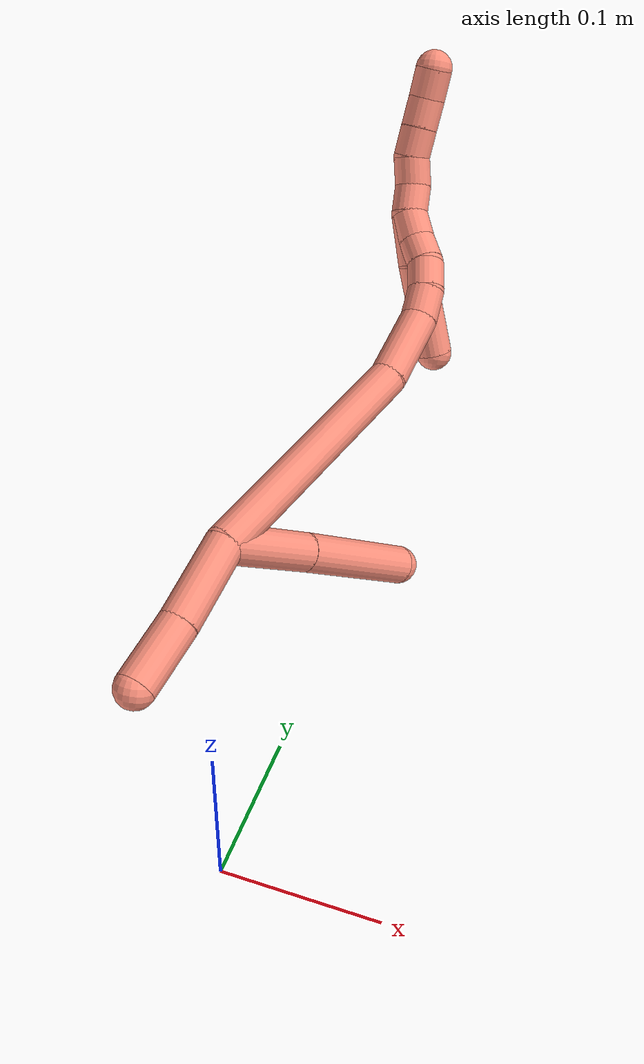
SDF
<sdf version="1.7">
 <world name="default">
  <model name="bin">
   <static>1</static>
   <link name="bottom">
    <collision name="collision-bottom">
     <pose>0 0 -0.01 0 -0 0</pose>
     <geometry><box><size>0.8 0.6 0.02</size></box></geometry>
     <surface>
      <friction><ode><mu>100</mu><mu2>100</mu2></ode></friction>
      <contact><collide_bitmask>65535</collide_bitmask></contact>
     </surface>
    </collision>
   </link>
   <link name="west_wall">
    <collision name="collision-west_wall">
     <pose>-0.41 0 0.1 0 -0 0</pose>
     <geometry><box><size>0.02 0.6 0.2</size></box></geometry>
     <surface>
      <friction><ode><mu>100</mu><mu2>100</mu2></ode></friction>
      <contact><collide_bitmask>65535</collide_bitmask></contact>
     </surface>
    </collision>
   </link>
   <link name="east_wall">
    <collision name="collision-east_wall">
     <pose>0.41 0 0.1 0 -0 0</pose>
     <geometry><box><size>0.02 0.6 0.2</size></box></geometry>
     <surface>
      <friction><ode><mu>100</mu><mu2>100</mu2></ode></friction>
      <contact><collide_bitmask>65535</collide_bitmask></contact>
     </surface>
    </collision>
   </link>
   <link name="south_wall">
    <collision name="collision-south_wall">
     <pose>0 -0.31 0.1 0 -0 0</pose>
     <geometry><box><size>0.8 0.02 0.2</size></box></geometry>
     <surface>
      <friction><ode><mu>100</mu><mu2>100</mu2></ode></friction>
      <contact><collide_bitmask>65535</collide_bitmask></contact>
     </surface>
    </collision>
   </link>
   <link name="north_wall">
    <collision name="collision-north_wall">
     <pose>0 0.31 0.1 0 -0 0</pose>
     <geometry><box><size>0.8 0.02 0.2</size></box></geometry>
     <surface>
      <friction><ode><mu>100</mu><mu2>100</mu2></ode></friction>
      <contact><collide_bitmask>65535</collide_bitmask></contact>
     </surface>
    </collision>
   </link>
  </model>
  <model name="16">
   <static>0</static>
   <link name="16">
    <collision name="collision-cylinder-e_1_2_8">
     <pose>-0.03073 0.005395 -0.005026 -2.32074 -1.33531 2.133</pose>
     <geometry><cylinder><radius>0.0125</radius><length>0.063203</length></cylinder></geometry>
     <surface>
      <friction><ode><mu>1.16</mu><mu2>1.16</mu2><slip1>0</slip1><slip2>0</slip2></ode></friction>
      <contact><ode><kp>1e+06</kp><kd>1</kd><max_vel>0</max_vel><min_depth>0.001</min_depth></ode></contact>
     </surface>
    </collision>
    <visual name="visual-cylinder-e_1_2_8">
     <pose>-0.03073 0.005395 -0.005026 -2.32074 -1.33531 2.133</pose>
     <geometry><cylinder><radius>0.0125</radius><length>0.063203</length></cylinder></geometry>
     <material><ambient>1 0.576471 0.494118 1</ambient></material>
    </visual>
    <collision name="collision-cylinder-e_2_8_6">
     <pose>-0.103635 0.017345 -0.017903 -2.44601 -1.33289 2.27775</pose>
     <geometry><cylinder><radius>0.0125</radius><length>0.086797</length></cylinder></geometry>
     <surface>
      <friction><ode><mu>1.16</mu><mu2>1.16</mu2><slip1>0</slip1><slip2>0</slip2></ode></friction>
      <contact><ode><kp>1e+06</kp><kd>1</kd><max_vel>0</max_vel><min_depth>0.001</min_depth></ode></contact>
     </surface>
    </collision>
    <visual name="visual-cylinder-e_2_8_6">
     <pose>-0.103635 0.017345 -0.017903 -2.44601 -1.33289 2.27775</pose>
     <geometry><cylinder><radius>0.0125</radius><length>0.086797</length></cylinder></geometry>
     <material><ambient>1 0.576471 0.494118 1</ambient></material>
    </visual>
    <collision name="collision-cylinder-e_1_2_9">
     <pose>0.019445 0.004525 -0.019926 -2.9183 0.760627 -2.59477</pose>
     <geometry><cylinder><radius>0.0125</radius><length>0.056413</length></cylinder></geometry>
     <surface>
      <friction><ode><mu>1.16</mu><mu2>1.16</mu2><slip1>0</slip1><slip2>0</slip2></ode></friction>
      <contact><ode><kp>1e+06</kp><kd>1</kd><max_vel>0</max_vel><min_depth>0.001</min_depth></ode></contact>
     </surface>
    </collision>
    <visual name="visual-cylinder-e_1_2_9">
     <pose>0.019445 0.004525 -0.019926 -2.9183 0.760627 -2.59477</pose>
     <geometry><cylinder><radius>0.0125</radius><length>0.056413</length></cylinder></geometry>
     <material><ambient>1 0.576471 0.494118 1</ambient></material>
    </visual>
    <collision name="collision-cylinder-e_2_9_5">
     <pose>0.054838 0.011686 -0.054469 -2.96311 0.82092 -2.73602</pose>
     <geometry><cylinder><radius>0.0125</radius><length>0.043587</length></cylinder></geometry>
     <surface>
      <friction><ode><mu>1.16</mu><mu2>1.16</mu2><slip1>0</slip1><slip2>0</slip2></ode></friction>
      <contact><ode><kp>1e+06</kp><kd>1</kd><max_vel>0</max_vel><min_depth>0.001</min_depth></ode></contact>
     </surface>
    </collision>
    <visual name="visual-cylinder-e_2_9_5">
     <pose>0.054838 0.011686 -0.054469 -2.96311 0.82092 -2.73602</pose>
     <geometry><cylinder><radius>0.0125</radius><length>0.043587</length></cylinder></geometry>
     <material><ambient>1 0.576471 0.494118 1</ambient></material>
    </visual>
    <collision name="collision-cylinder-e_1_2_10">
     <pose>-0.066863 -1.1e-05 0.048701 0.000225 -0.941284 -0.000114</pose>
     <geometry><cylinder><radius>0.0125</radius><length>0.165438</length></cylinder></geometry>
     <surface>
      <friction><ode><mu>1.16</mu><mu2>1.16</mu2><slip1>0</slip1><slip2>0</slip2></ode></friction>
      <contact><ode><kp>1e+06</kp><kd>1</kd><max_vel>0</max_vel><min_depth>0.001</min_depth></ode></contact>
     </surface>
    </collision>
    <visual name="visual-cylinder-e_1_2_10">
     <pose>-0.066863 -1.1e-05 0.048701 0.000225 -0.941284 -0.000114</pose>
     <geometry><cylinder><radius>0.0125</radius><length>0.165438</length></cylinder></geometry>
     <material><ambient>1 0.576471 0.494118 1</ambient></material>
    </visual>
    <collision name="collision-cylinder-e_2_10_11">
     <pose>-0.151152 -0.00382 0.116517 0.196145 -0.729575 -0.075109</pose>
     <geometry><cylinder><radius>0.0125</radius><length>0.052288</length></cylinder></geometry>
     <surface>
      <friction><ode><mu>1.16</mu><mu2>1.16</mu2><slip1>0</slip1><slip2>0</slip2></ode></friction>
      <contact><ode><kp>1e+06</kp><kd>1</kd><max_vel>0</max_vel><min_depth>0.001</min_depth></ode></contact>
     </surface>
    </collision>
    <visual name="visual-cylinder-e_2_10_11">
     <pose>-0.151152 -0.00382 0.116517 0.196145 -0.729575 -0.075109</pose>
     <geometry><cylinder><radius>0.0125</radius><length>0.052288</length></cylinder></geometry>
     <material><ambient>1 0.576471 0.494118 1</ambient></material>
    </visual>
    <collision name="collision-cylinder-e_3_11_12">
     <pose>-0.173017 -0.009601 0.145485 0.198599 -0.415901 -0.042037</pose>
     <geometry><cylinder><radius>0.0125</radius><length>0.021973</length></cylinder></geometry>
     <surface>
      <friction><ode><mu>1.16</mu><mu2>1.16</mu2><slip1>0</slip1><slip2>0</slip2></ode></friction>
      <contact><ode><kp>1e+06</kp><kd>1</kd><max_vel>0</max_vel><min_depth>0.001</min_depth></ode></contact>
     </surface>
    </collision>
    <visual name="visual-cylinder-e_3_11_12">
     <pose>-0.173017 -0.009601 0.145485 0.198599 -0.415901 -0.042037</pose>
     <geometry><cylinder><radius>0.0125</radius><length>0.021973</length></cylinder></geometry>
     <material><ambient>1 0.576471 0.494118 1</ambient></material>
    </visual>
    <collision name="collision-cylinder-e_4_12_13">
     <pose>-0.180473 -0.015637 0.164018 0.43681 -0.305134 -0.068227</pose>
     <geometry><cylinder><radius>0.0125</radius><length>0.020087</length></cylinder></geometry>
     <surface>
      <friction><ode><mu>1.16</mu><mu2>1.16</mu2><slip1>0</slip1><slip2>0</slip2></ode></friction>
      <contact><ode><kp>1e+06</kp><kd>1</kd><max_vel>0</max_vel><min_depth>0.001</min_depth></ode></contact>
     </surface>
    </collision>
    <visual name="visual-cylinder-e_4_12_13">
     <pose>-0.180473 -0.015637 0.164018 0.43681 -0.305134 -0.068227</pose>
     <geometry><cylinder><radius>0.0125</radius><length>0.020087</length></cylinder></geometry>
     <material><ambient>1 0.576471 0.494118 1</ambient></material>
    </visual>
    <collision name="collision-cylinder-e_5_13_14">
     <pose>-0.185726 -0.026397 0.179825 0.755133 -0.224506 -0.089354</pose>
     <geometry><cylinder><radius>0.0125</radius><length>0.020078</length></cylinder></geometry>
     <surface>
      <friction><ode><mu>1.16</mu><mu2>1.16</mu2><slip1>0</slip1><slip2>0</slip2></ode></friction>
      <contact><ode><kp>1e+06</kp><kd>1</kd><max_vel>0</max_vel><min_depth>0.001</min_depth></ode></contact>
     </surface>
    </collision>
    <visual name="visual-cylinder-e_5_13_14">
     <pose>-0.185726 -0.026397 0.179825 0.755133 -0.224506 -0.089354</pose>
     <geometry><cylinder><radius>0.0125</radius><length>0.020078</length></cylinder></geometry>
     <material><ambient>1 0.576471 0.494118 1</ambient></material>
    </visual>
    <collision name="collision-cylinder-e_6_14_1">
     <pose>-0.188016 -0.038169 0.195653 0.527074 -0.005487 -0.001481</pose>
     <geometry><cylinder><radius>0.0125</radius><length>0.020136</length></cylinder></geometry>
     <surface>
      <friction><ode><mu>1.16</mu><mu2>1.16</mu2><slip1>0</slip1><slip2>0</slip2></ode></friction>
      <contact><ode><kp>1e+06</kp><kd>1</kd><max_vel>0</max_vel><min_depth>0.001</min_depth></ode></contact>
     </surface>
    </collision>
    <visual name="visual-cylinder-e_6_14_1">
     <pose>-0.188016 -0.038169 0.195653 0.527074 -0.005487 -0.001481</pose>
     <geometry><cylinder><radius>0.0125</radius><length>0.020136</length></cylinder></geometry>
     <material><ambient>1 0.576471 0.494118 1</ambient></material>
    </visual>
    <collision name="collision-cylinder-e_1_1_15">
     <pose>-0.189986 -0.044936 0.214021 0.174305 -0.19268 -0.016887</pose>
     <geometry><cylinder><radius>0.0125</radius><length>0.02</length></cylinder></geometry>
     <surface>
      <friction><ode><mu>1.16</mu><mu2>1.16</mu2><slip1>0</slip1><slip2>0</slip2></ode></friction>
      <contact><ode><kp>1e+06</kp><kd>1</kd><max_vel>0</max_vel><min_depth>0.001</min_depth></ode></contact>
     </surface>
    </collision>
    <visual name="visual-cylinder-e_1_1_15">
     <pose>-0.189986 -0.044936 0.214021 0.174305 -0.19268 -0.016887</pose>
     <geometry><cylinder><radius>0.0125</radius><length>0.02</length></cylinder></geometry>
     <material><ambient>1 0.576471 0.494118 1</ambient></material>
    </visual>
    <collision name="collision-cylinder-e_2_15_16">
     <pose>-0.190451 -0.048175 0.233461 0.155962 0.145466 0.011387</pose>
     <geometry><cylinder><radius>0.0125</radius><length>0.02</length></cylinder></geometry>
     <surface>
      <friction><ode><mu>1.16</mu><mu2>1.16</mu2><slip1>0</slip1><slip2>0</slip2></ode></friction>
      <contact><ode><kp>1e+06</kp><kd>1</kd><max_vel>0</max_vel><min_depth>0.001</min_depth></ode></contact>
     </surface>
    </collision>
    <visual name="visual-cylinder-e_2_15_16">
     <pose>-0.190451 -0.048175 0.233461 0.155962 0.145466 0.011387</pose>
     <geometry><cylinder><radius>0.0125</radius><length>0.02</length></cylinder></geometry>
     <material><ambient>1 0.576471 0.494118 1</ambient></material>
    </visual>
    <collision name="collision-cylinder-e_3_16_17">
     <pose>-0.188911 -0.048416 0.253151 -0.129971 0.00911 -0.000593</pose>
     <geometry><cylinder><radius>0.0125</radius><length>0.02</length></cylinder></geometry>
     <surface>
      <friction><ode><mu>1.16</mu><mu2>1.16</mu2><slip1>0</slip1><slip2>0</slip2></ode></friction>
      <contact><ode><kp>1e+06</kp><kd>1</kd><max_vel>0</max_vel><min_depth>0.001</min_depth></ode></contact>
     </surface>
    </collision>
    <visual name="visual-cylinder-e_3_16_17">
     <pose>-0.188911 -0.048416 0.253151 -0.129971 0.00911 -0.000593</pose>
     <geometry><cylinder><radius>0.0125</radius><length>0.02</length></cylinder></geometry>
     <material><ambient>1 0.576471 0.494118 1</ambient></material>
    </visual>
    <collision name="collision-cylinder-e_4_17_18">
     <pose>-0.18898 -0.045957 0.272997 -0.116574 -0.016057 0.000937</pose>
     <geometry><cylinder><radius>0.0125</radius><length>0.02</length></cylinder></geometry>
     <surface>
      <friction><ode><mu>1.16</mu><mu2>1.16</mu2><slip1>0</slip1><slip2>0</slip2></ode></friction>
      <contact><ode><kp>1e+06</kp><kd>1</kd><max_vel>0</max_vel><min_depth>0.001</min_depth></ode></contact>
     </surface>
    </collision>
    <visual name="visual-cylinder-e_4_17_18">
     <pose>-0.18898 -0.045957 0.272997 -0.116574 -0.016057 0.000937</pose>
     <geometry><cylinder><radius>0.0125</radius><length>0.02</length></cylinder></geometry>
     <material><ambient>1 0.576471 0.494118 1</ambient></material>
    </visual>
    <collision name="collision-cylinder-e_5_18_4">
     <pose>-0.188128 -0.04302 0.292717 -0.179204 0.101424 -0.00912</pose>
     <geometry><cylinder><radius>0.0125</radius><length>0.02</length></cylinder></geometry>
     <surface>
      <friction><ode><mu>1.16</mu><mu2>1.16</mu2><slip1>0</slip1><slip2>0</slip2></ode></friction>
      <contact><ode><kp>1e+06</kp><kd>1</kd><max_vel>0</max_vel><min_depth>0.001</min_depth></ode></contact>
     </surface>
    </collision>
    <visual name="visual-cylinder-e_5_18_4">
     <pose>-0.188128 -0.04302 0.292717 -0.179204 0.101424 -0.00912</pose>
     <geometry><cylinder><radius>0.0125</radius><length>0.02</length></cylinder></geometry>
     <material><ambient>1 0.576471 0.494118 1</ambient></material>
    </visual>
    <collision name="collision-cylinder-e_1_1_19">
     <pose>-0.190672 -0.038793 0.187813 -2.87931 -0.150703 1.0397</pose>
     <geometry><cylinder><radius>0.0125</radius><length>0.034647</length></cylinder></geometry>
     <surface>
      <friction><ode><mu>1.16</mu><mu2>1.16</mu2><slip1>0</slip1><slip2>0</slip2></ode></friction>
      <contact><ode><kp>1e+06</kp><kd>1</kd><max_vel>0</max_vel><min_depth>0.001</min_depth></ode></contact>
     </surface>
    </collision>
    <visual name="visual-cylinder-e_1_1_19">
     <pose>-0.190672 -0.038793 0.187813 -2.87931 -0.150703 1.0397</pose>
     <geometry><cylinder><radius>0.0125</radius><length>0.034647</length></cylinder></geometry>
     <material><ambient>1 0.576471 0.494118 1</ambient></material>
    </visual>
    <collision name="collision-cylinder-e_2_19_3">
     <pose>-0.203646 -0.027873 0.14097 -2.93094 -0.323036 1.99051</pose>
     <geometry><cylinder><radius>0.0125</radius><length>0.065353</length></cylinder></geometry>
     <surface>
      <friction><ode><mu>1.16</mu><mu2>1.16</mu2><slip1>0</slip1><slip2>0</slip2></ode></friction>
      <contact><ode><kp>1e+06</kp><kd>1</kd><max_vel>0</max_vel><min_depth>0.001</min_depth></ode></contact>
     </surface>
    </collision>
    <visual name="visual-cylinder-e_2_19_3">
     <pose>-0.203646 -0.027873 0.14097 -2.93094 -0.323036 1.99051</pose>
     <geometry><cylinder><radius>0.0125</radius><length>0.065353</length></cylinder></geometry>
     <material><ambient>1 0.576471 0.494118 1</ambient></material>
    </visual>
    <collision name="collision-sphere-3">
     <pose>-0.214019 -0.021394 0.110669 0 -0 0</pose>
     <geometry><sphere><radius>0.0125</radius></sphere></geometry>
     <surface>
      <friction><ode><mu>1.16</mu><mu2>1.16</mu2><slip1>0</slip1><slip2>0</slip2></ode></friction>
      <contact><ode><kp>1e+06</kp><kd>1</kd><max_vel>0</max_vel><min_depth>0.001</min_depth></ode></contact>
     </surface>
    </collision>
    <visual name="visual-sphere-3">
     <pose>-0.214019 -0.021394 0.110669 0 -0 0</pose>
     <geometry><sphere><radius>0.0125</radius></sphere></geometry>
     <material><ambient>1 0.576471 0.494118 1</ambient></material>
    </visual>
    <collision name="collision-sphere-19">
     <pose>-0.193273 -0.034352 0.171272 0 -0 0</pose>
     <geometry><sphere><radius>0.0125</radius></sphere></geometry>
     <surface>
      <friction><ode><mu>1.16</mu><mu2>1.16</mu2><slip1>0</slip1><slip2>0</slip2></ode></friction>
      <contact><ode><kp>1e+06</kp><kd>1</kd><max_vel>0</max_vel><min_depth>0.001</min_depth></ode></contact>
     </surface>
    </collision>
    <visual name="visual-sphere-19">
     <pose>-0.193273 -0.034352 0.171272 0 -0 0</pose>
     <geometry><sphere><radius>0.0125</radius></sphere></geometry>
     <material><ambient>1 0.576471 0.494118 1</ambient></material>
    </visual>
    <collision name="collision-sphere-10">
     <pose>-0.133726 -2.2e-05 0.097402 0 -0 0</pose>
     <geometry><sphere><radius>0.0125</radius></sphere></geometry>
     <surface>
      <friction><ode><mu>1.16</mu><mu2>1.16</mu2><slip1>0</slip1><slip2>0</slip2></ode></friction>
      <contact><ode><kp>1e+06</kp><kd>1</kd><max_vel>0</max_vel><min_depth>0.001</min_depth></ode></contact>
     </surface>
    </collision>
    <visual name="visual-sphere-10">
     <pose>-0.133726 -2.2e-05 0.097402 0 -0 0</pose>
     <geometry><sphere><radius>0.0125</radius></sphere></geometry>
     <material><ambient>1 0.576471 0.494118 1</ambient></material>
    </visual>
    <collision name="collision-sphere-5">
     <pose>0.070786 0.014323 -0.069086 0 -0 0</pose>
     <geometry><sphere><radius>0.0125</radius></sphere></geometry>
     <surface>
      <friction><ode><mu>1.16</mu><mu2>1.16</mu2><slip1>0</slip1><slip2>0</slip2></ode></friction>
      <contact><ode><kp>1e+06</kp><kd>1</kd><max_vel>0</max_vel><min_depth>0.001</min_depth></ode></contact>
     </surface>
    </collision>
    <visual name="visual-sphere-5">
     <pose>0.070786 0.014323 -0.069086 0 -0 0</pose>
     <geometry><sphere><radius>0.0125</radius></sphere></geometry>
     <material><ambient>1 0.576471 0.494118 1</ambient></material>
    </visual>
    <collision name="collision-sphere-6">
     <pose>-0.145811 0.023899 -0.025754 0 -0 0</pose>
     <geometry><sphere><radius>0.0125</radius></sphere></geometry>
     <surface>
      <friction><ode><mu>1.16</mu><mu2>1.16</mu2><slip1>0</slip1><slip2>0</slip2></ode></friction>
      <contact><ode><kp>1e+06</kp><kd>1</kd><max_vel>0</max_vel><min_depth>0.001</min_depth></ode></contact>
     </surface>
    </collision>
    <visual name="visual-sphere-6">
     <pose>-0.145811 0.023899 -0.025754 0 -0 0</pose>
     <geometry><sphere><radius>0.0125</radius></sphere></geometry>
     <material><ambient>1 0.576471 0.494118 1</ambient></material>
    </visual>
    <collision name="collision-sphere-9">
     <pose>0.03889 0.009049 -0.039851 0 -0 0</pose>
     <geometry><sphere><radius>0.0125</radius></sphere></geometry>
     <surface>
      <friction><ode><mu>1.16</mu><mu2>1.16</mu2><slip1>0</slip1><slip2>0</slip2></ode></friction>
      <contact><ode><kp>1e+06</kp><kd>1</kd><max_vel>0</max_vel><min_depth>0.001</min_depth></ode></contact>
     </surface>
    </collision>
    <visual name="visual-sphere-9">
     <pose>0.03889 0.009049 -0.039851 0 -0 0</pose>
     <geometry><sphere><radius>0.0125</radius></sphere></geometry>
     <material><ambient>1 0.576471 0.494118 1</ambient></material>
    </visual>
    <collision name="collision-sphere-2">
     <geometry><sphere><radius>0.0125</radius></sphere></geometry>
     <surface>
      <friction><ode><mu>1.16</mu><mu2>1.16</mu2><slip1>0</slip1><slip2>0</slip2></ode></friction>
      <contact><ode><kp>1e+06</kp><kd>1</kd><max_vel>0</max_vel><min_depth>0.001</min_depth></ode></contact>
     </surface>
    </collision>
    <visual name="visual-sphere-2">
     <geometry><sphere><radius>0.0125</radius></sphere></geometry>
     <material><ambient>1 0.576471 0.494118 1</ambient></material>
    </visual>
    <collision name="collision-sphere-8">
     <pose>-0.061459 0.01079 -0.010051 0 -0 0</pose>
     <geometry><sphere><radius>0.0125</radius></sphere></geometry>
     <surface>
      <friction><ode><mu>1.16</mu><mu2>1.16</mu2><slip1>0</slip1><slip2>0</slip2></ode></friction>
      <contact><ode><kp>1e+06</kp><kd>1</kd><max_vel>0</max_vel><min_depth>0.001</min_depth></ode></contact>
     </surface>
    </collision>
    <visual name="visual-sphere-8">
     <pose>-0.061459 0.01079 -0.010051 0 -0 0</pose>
     <geometry><sphere><radius>0.0125</radius></sphere></geometry>
     <material><ambient>1 0.576471 0.494118 1</ambient></material>
    </visual>
    <collision name="collision-sphere-11">
     <pose>-0.168579 -0.007618 0.135633 0 -0 0</pose>
     <geometry><sphere><radius>0.0125</radius></sphere></geometry>
     <surface>
      <friction><ode><mu>1.16</mu><mu2>1.16</mu2><slip1>0</slip1><slip2>0</slip2></ode></friction>
      <contact><ode><kp>1e+06</kp><kd>1</kd><max_vel>0</max_vel><min_depth>0.001</min_depth></ode></contact>
     </surface>
    </collision>
    <visual name="visual-sphere-11">
     <pose>-0.168579 -0.007618 0.135633 0 -0 0</pose>
     <geometry><sphere><radius>0.0125</radius></sphere></geometry>
     <material><ambient>1 0.576471 0.494118 1</ambient></material>
    </visual>
    <collision name="collision-sphere-12">
     <pose>-0.177456 -0.011584 0.155338 0 -0 0</pose>
     <geometry><sphere><radius>0.0125</radius></sphere></geometry>
     <surface>
      <friction><ode><mu>1.16</mu><mu2>1.16</mu2><slip1>0</slip1><slip2>0</slip2></ode></friction>
      <contact><ode><kp>1e+06</kp><kd>1</kd><max_vel>0</max_vel><min_depth>0.001</min_depth></ode></contact>
     </surface>
    </collision>
    <visual name="visual-sphere-12">
     <pose>-0.177456 -0.011584 0.155338 0 -0 0</pose>
     <geometry><sphere><radius>0.0125</radius></sphere></geometry>
     <material><ambient>1 0.576471 0.494118 1</ambient></material>
    </visual>
    <collision name="collision-sphere-13">
     <pose>-0.183491 -0.019689 0.172698 0 -0 0</pose>
     <geometry><sphere><radius>0.0125</radius></sphere></geometry>
     <surface>
      <friction><ode><mu>1.16</mu><mu2>1.16</mu2><slip1>0</slip1><slip2>0</slip2></ode></friction>
      <contact><ode><kp>1e+06</kp><kd>1</kd><max_vel>0</max_vel><min_depth>0.001</min_depth></ode></contact>
     </surface>
    </collision>
    <visual name="visual-sphere-13">
     <pose>-0.183491 -0.019689 0.172698 0 -0 0</pose>
     <geometry><sphere><radius>0.0125</radius></sphere></geometry>
     <material><ambient>1 0.576471 0.494118 1</ambient></material>
    </visual>
    <collision name="collision-sphere-14">
     <pose>-0.18796 -0.033105 0.186951 0 -0 0</pose>
     <geometry><sphere><radius>0.0125</radius></sphere></geometry>
     <surface>
      <friction><ode><mu>1.16</mu><mu2>1.16</mu2><slip1>0</slip1><slip2>0</slip2></ode></friction>
      <contact><ode><kp>1e+06</kp><kd>1</kd><max_vel>0</max_vel><min_depth>0.001</min_depth></ode></contact>
     </surface>
    </collision>
    <visual name="visual-sphere-14">
     <pose>-0.18796 -0.033105 0.186951 0 -0 0</pose>
     <geometry><sphere><radius>0.0125</radius></sphere></geometry>
     <material><ambient>1 0.576471 0.494118 1</ambient></material>
    </visual>
    <collision name="collision-sphere-1">
     <pose>-0.188071 -0.043233 0.204354 0 -0 0</pose>
     <geometry><sphere><radius>0.0125</radius></sphere></geometry>
     <surface>
      <friction><ode><mu>1.16</mu><mu2>1.16</mu2><slip1>0</slip1><slip2>0</slip2></ode></friction>
      <contact><ode><kp>1e+06</kp><kd>1</kd><max_vel>0</max_vel><min_depth>0.001</min_depth></ode></contact>
     </surface>
    </collision>
    <visual name="visual-sphere-1">
     <pose>-0.188071 -0.043233 0.204354 0 -0 0</pose>
     <geometry><sphere><radius>0.0125</radius></sphere></geometry>
     <material><ambient>1 0.576471 0.494118 1</ambient></material>
    </visual>
    <collision name="collision-sphere-18">
     <pose>-0.189141 -0.044794 0.282928 0 -0 0</pose>
     <geometry><sphere><radius>0.0125</radius></sphere></geometry>
     <surface>
      <friction><ode><mu>1.16</mu><mu2>1.16</mu2><slip1>0</slip1><slip2>0</slip2></ode></friction>
      <contact><ode><kp>1e+06</kp><kd>1</kd><max_vel>0</max_vel><min_depth>0.001</min_depth></ode></contact>
     </surface>
    </collision>
    <visual name="visual-sphere-18">
     <pose>-0.189141 -0.044794 0.282928 0 -0 0</pose>
     <geometry><sphere><radius>0.0125</radius></sphere></geometry>
     <material><ambient>1 0.576471 0.494118 1</ambient></material>
    </visual>
    <collision name="collision-sphere-15">
     <pose>-0.191901 -0.046638 0.223687 0 -0 0</pose>
     <geometry><sphere><radius>0.0125</radius></sphere></geometry>
     <surface>
      <friction><ode><mu>1.16</mu><mu2>1.16</mu2><slip1>0</slip1><slip2>0</slip2></ode></friction>
      <contact><ode><kp>1e+06</kp><kd>1</kd><max_vel>0</max_vel><min_depth>0.001</min_depth></ode></contact>
     </surface>
    </collision>
    <visual name="visual-sphere-15">
     <pose>-0.191901 -0.046638 0.223687 0 -0 0</pose>
     <geometry><sphere><radius>0.0125</radius></sphere></geometry>
     <material><ambient>1 0.576471 0.494118 1</ambient></material>
    </visual>
    <collision name="collision-sphere-16">
     <pose>-0.189002 -0.049712 0.243235 0 -0 0</pose>
     <geometry><sphere><radius>0.0125</radius></sphere></geometry>
     <surface>
      <friction><ode><mu>1.16</mu><mu2>1.16</mu2><slip1>0</slip1><slip2>0</slip2></ode></friction>
      <contact><ode><kp>1e+06</kp><kd>1</kd><max_vel>0</max_vel><min_depth>0.001</min_depth></ode></contact>
     </surface>
    </collision>
    <visual name="visual-sphere-16">
     <pose>-0.189002 -0.049712 0.243235 0 -0 0</pose>
     <geometry><sphere><radius>0.0125</radius></sphere></geometry>
     <material><ambient>1 0.576471 0.494118 1</ambient></material>
    </visual>
    <collision name="collision-sphere-17">
     <pose>-0.188819 -0.04712 0.263066 0 -0 0</pose>
     <geometry><sphere><radius>0.0125</radius></sphere></geometry>
     <surface>
      <friction><ode><mu>1.16</mu><mu2>1.16</mu2><slip1>0</slip1><slip2>0</slip2></ode></friction>
      <contact><ode><kp>1e+06</kp><kd>1</kd><max_vel>0</max_vel><min_depth>0.001</min_depth></ode></contact>
     </surface>
    </collision>
    <visual name="visual-sphere-17">
     <pose>-0.188819 -0.04712 0.263066 0 -0 0</pose>
     <geometry><sphere><radius>0.0125</radius></sphere></geometry>
     <material><ambient>1 0.576471 0.494118 1</ambient></material>
    </visual>
    <collision name="collision-sphere-4">
     <pose>-0.187116 -0.041247 0.302506 0 -0 0</pose>
     <geometry><sphere><radius>0.0125</radius></sphere></geometry>
     <surface>
      <friction><ode><mu>1.16</mu><mu2>1.16</mu2><slip1>0</slip1><slip2>0</slip2></ode></friction>
      <contact><ode><kp>1e+06</kp><kd>1</kd><max_vel>0</max_vel><min_depth>0.001</min_depth></ode></contact>
     </surface>
    </collision>
    <visual name="visual-sphere-4">
     <pose>-0.187116 -0.041247 0.302506 0 -0 0</pose>
     <geometry><sphere><radius>0.0125</radius></sphere></geometry>
     <material><ambient>1 0.576471 0.494118 1</ambient></material>
    </visual>
    <inertial>
     <pose>-0.106935 -0.009586 0.085158 0 -0 0</pose>
     <mass>0.75</mass>
     <inertia>
      <ixx>0.000223</ixx>
      <ixy>0</ixy>
      <ixz>0</ixz>
      <iyy>0.000556</iyy>
      <iyz>0</iyz>
      <izz>0.000381</izz>
     </inertia>
    </inertial>
   </link>
   <pose>-0.031208 0.098546 0.168587 0.188561 -0.408197 -2.0156</pose>
  </model>
 </world>
</sdf>
